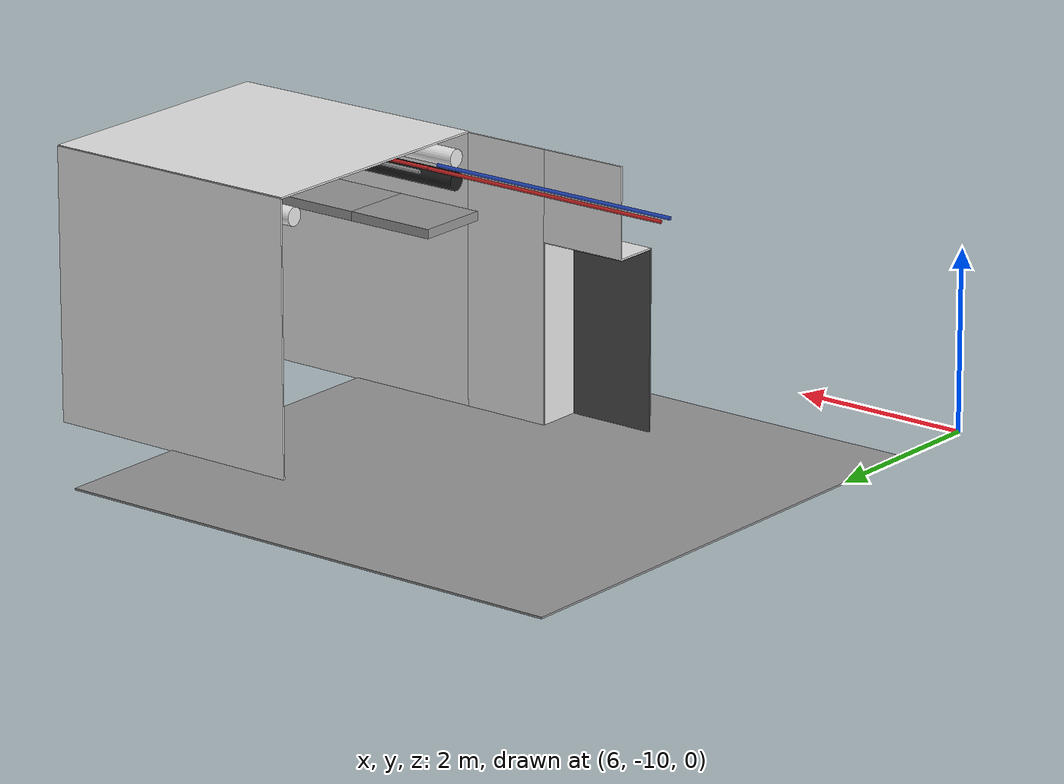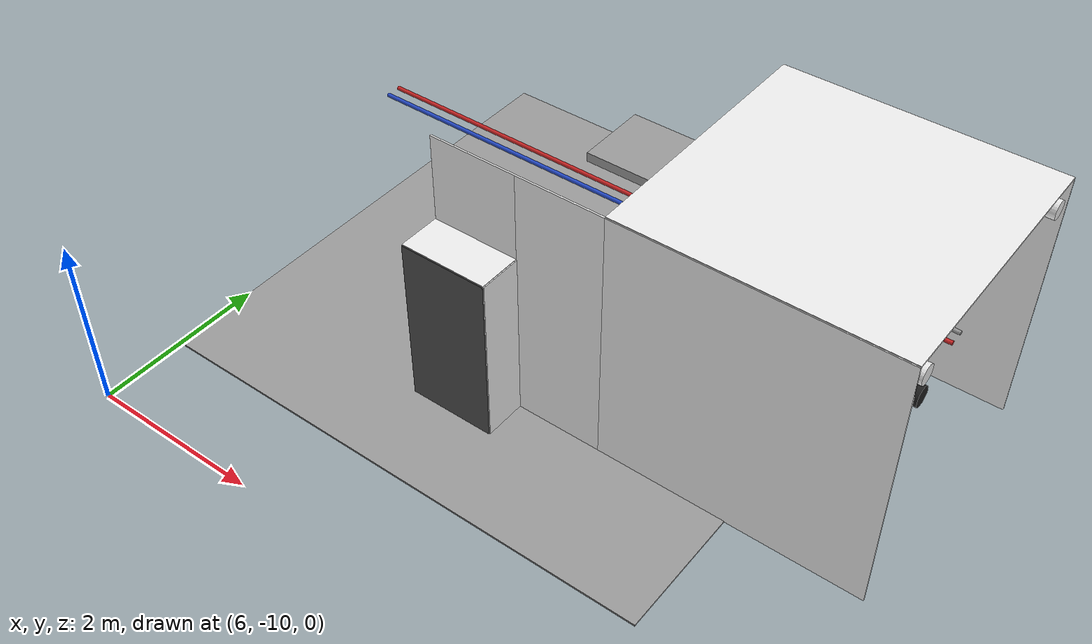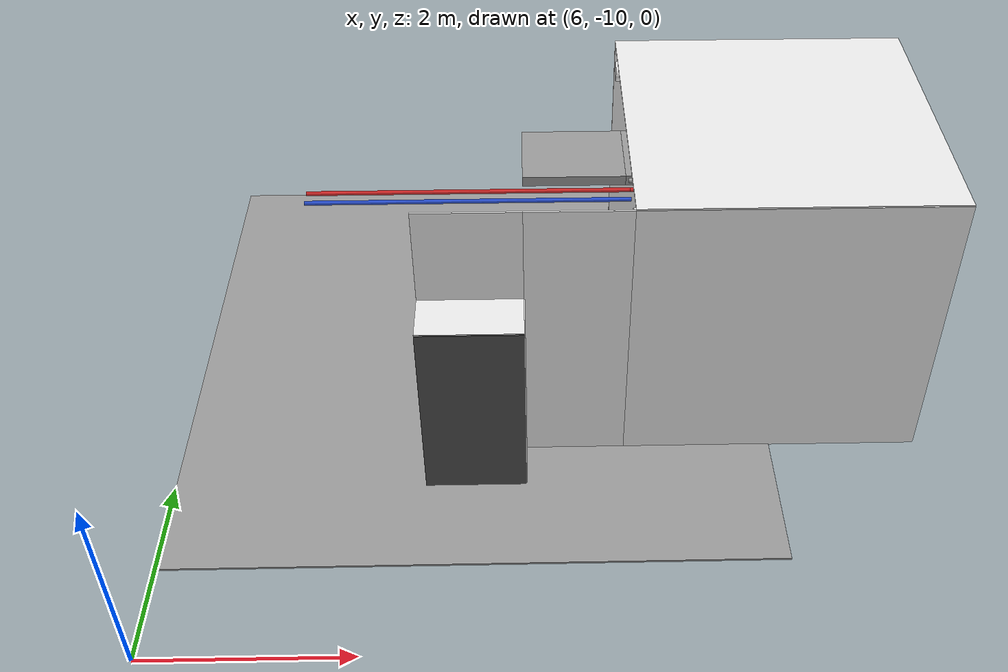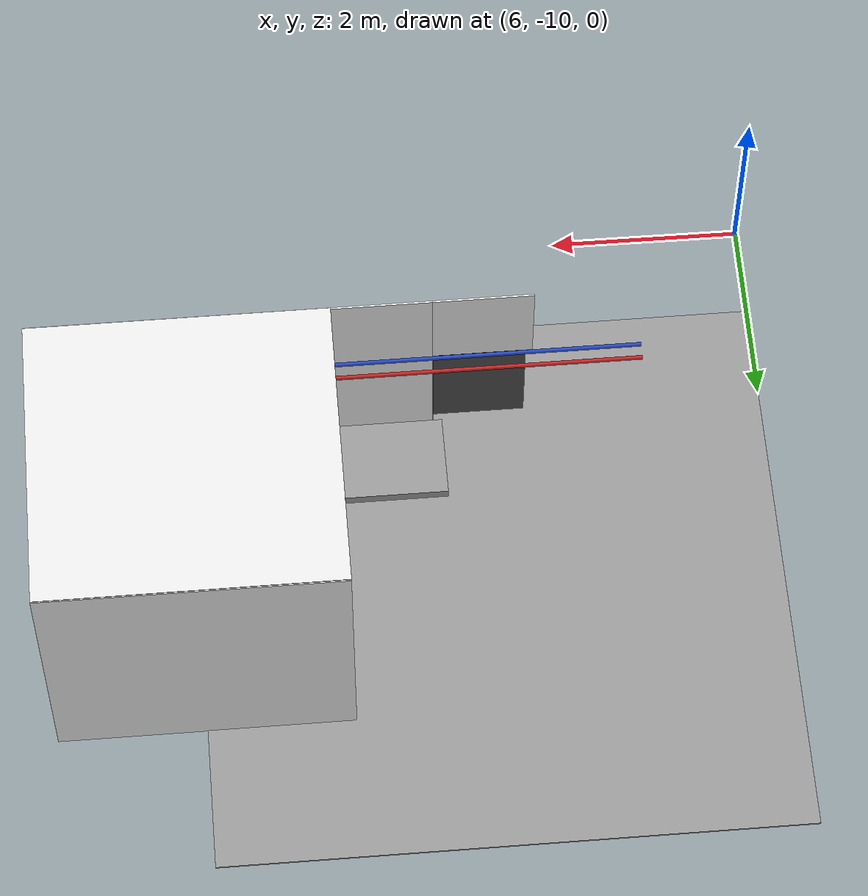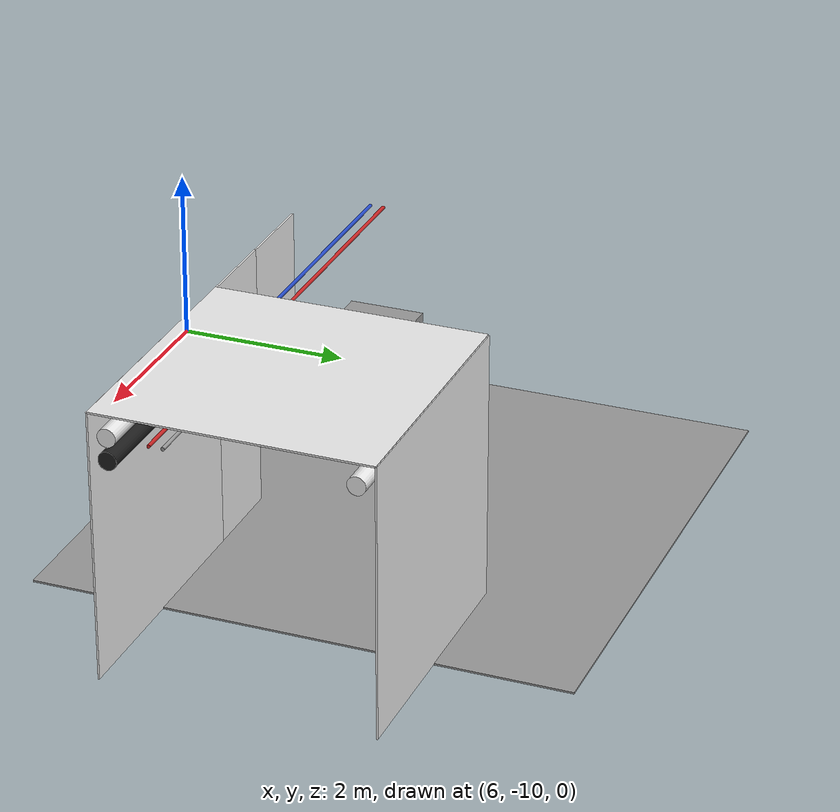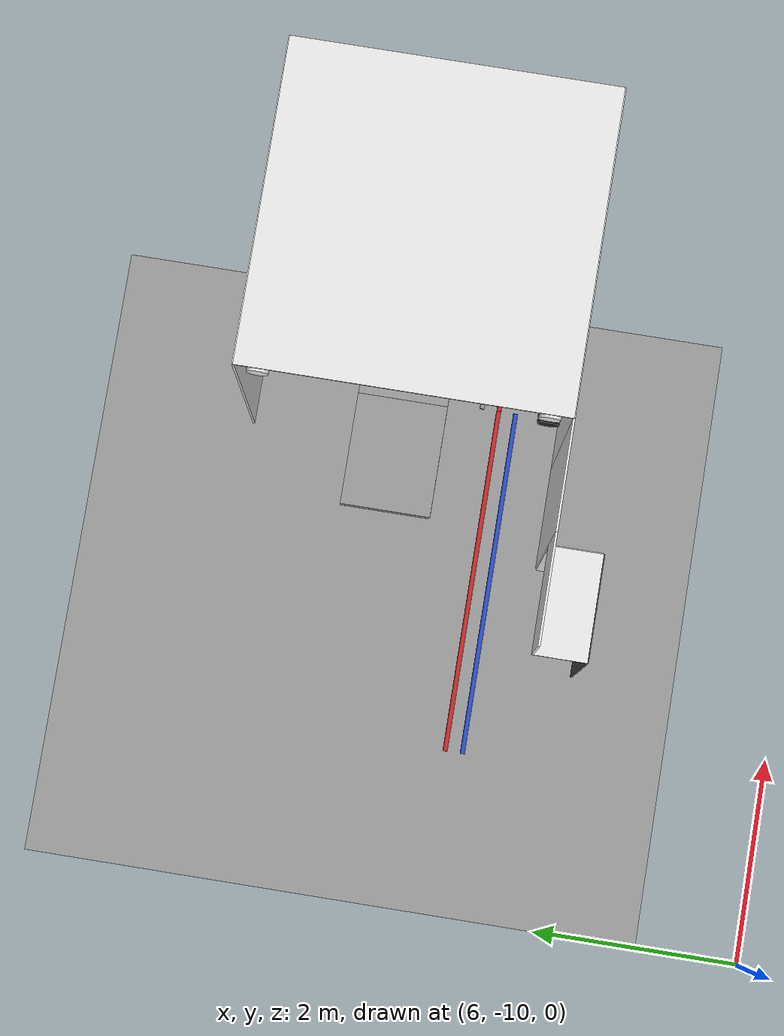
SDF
<sdf version="1.6">
 <world name="default">
  <model name="ceiling_1_3_-2_2_1">
   <pose>10.0 -6.0 2.55 0.0 0.0 -1.57</pose>
   <link name="link_1">
    <visual name="visual">
     <geometry><box><size>0.8 1 0.1</size></box></geometry>
     <material>
      <script><uri>file://media/materials/scripts/gazebo.material</uri><name>Gazebo/Grey</name></script>
     </material>
    </visual>
    <collision name="collision"><geometry><box><size>0.8 1 0.1</size></box></geometry></collision>
   </link>
   <static>1</static>
  </model>
  <model name="red_pipe_right_3_-2_0_1">
   <static>1</static>
   <pose>9.0 -6.0 2.76 0.0 0.0 -1.57</pose>
   <link name="link_0">
    <visual name="visual">
     <pose>0.85 0 0 1.57 0 0</pose>
     <geometry><cylinder><radius>0.02</radius><length>3.0</length></cylinder></geometry>
     <material>
      <script><uri>file://media/materials/scripts/gazebo.material</uri><name>Gazebo/Red</name></script>
     </material>
    </visual>
    <collision name="collision">
     <pose>0.85 0 0 1.57 0 0</pose>
     <geometry><cylinder><radius>0.02</radius><length>3.0</length></cylinder></geometry>
    </collision>
   </link>
  </model>
  <model name="blue_pipe_right_3_-2_0_1">
   <static>1</static>
   <pose>9.0 -6.0 2.76 0.0 0.0 -1.57</pose>
   <link name="link_0">
    <visual name="visual">
     <pose>1 0 0 1.57 0 0</pose>
     <geometry><cylinder><radius>0.02</radius><length>3.0</length></cylinder></geometry>
     <material>
      <script><uri>file://media/materials/scripts/gazebo.material</uri><name>Gazebo/Blue</name></script>
     </material>
    </visual>
    <collision name="collision">
     <pose>1 0 0 1.57 0 0</pose>
     <geometry><cylinder><radius>0.02</radius><length>3.0</length></cylinder></geometry>
    </collision>
   </link>
  </model>
  <model name="wall_right_front_left_3_-2_0_1">
   <static>1</static>
   <pose>10.0 -7.5 1.5 0.0 0.0 0.0</pose>
   <link name="link">
    <collision name="collision"><geometry><box><size>1.0 0.02 3.0</size></box></geometry></collision>
    <visual name="visual">
     <material>
      <script><name>Gazebo/White</name><uri>file://media/materials/scripts/gazebo.material</uri></script>
     </material>
     <geometry><box><size>1.0 0.02 3.0</size></box></geometry>
    </visual>
   </link>
  </model>
  <model name="wall_right_front_up_3_-2_0_1">
   <static>1</static>
   <pose>9.0 -7.5 2.5 0.0 0.0 0.0</pose>
   <link name="link">
    <collision name="collision"><geometry><box><size>1.0 0.02 1.0</size></box></geometry></collision>
    <visual name="visual">
     <material>
      <script><name>Gazebo/White</name><uri>file://media/materials/scripts/gazebo.material</uri></script>
     </material>
     <geometry><box><size>1.0 0.02 1.0</size></box></geometry>
    </visual>
   </link>
  </model>
  <model name="wall_right_inside_back_3_-2_0_1">
   <static>1</static>
   <pose>9.0 -8.0 1.0 0.0 0.0 0.0</pose>
   <link name="link">
    <collision name="collision"><geometry><box><size>1 0.02 2</size></box></geometry></collision>
    <visual name="visual">
     <material>
      <script><name>Gazebo/DarkGrey</name><uri>file://media/materials/scripts/gazebo.material</uri></script>
     </material>
     <geometry><box><size>1 0.02 2</size></box></geometry>
    </visual>
   </link>
  </model>
  <model name="wall_right_inside_left_3_-2_0_1">
   <static>1</static>
   <pose>9.5 -7.75 1.0 0.0 0.0 -1.57</pose>
   <link name="link">
    <collision name="collision"><geometry><box><size>0.5 0.02 2</size></box></geometry></collision>
    <visual name="visual">
     <material>
      <script><name>Gazebo/White</name><uri>file://media/materials/scripts/gazebo.material</uri></script>
     </material>
     <geometry><box><size>0.5 0.02 2</size></box></geometry>
    </visual>
   </link>
  </model>
  <model name="wall_right_inside_top_3_-2_0_1">
   <static>1</static>
   <pose>9.0 -7.75 2.0 1.57 0.0 0.0</pose>
   <link name="link">
    <collision name="collision"><geometry><box><size>1 0.02 0.5</size></box></geometry></collision>
    <visual name="visual">
     <material>
      <script><name>Gazebo/White</name><uri>file://media/materials/scripts/gazebo.material</uri></script>
     </material>
     <geometry><box><size>1 0.02 0.5</size></box></geometry>
    </visual>
   </link>
  </model>
  <model name="wall_bottom_3_-2_0_1">
   <static>1</static>
   <pose>9.0 -6.0 0.0 0.0 0.0 -1.57</pose>
   <link name="link">
    <collision name="collision"><geometry><box><size>6.0 6.0 0.02</size></box></geometry></collision>
    <visual name="visual">
     <material>
      <script><name>Gazebo/Grey</name><uri>file://media/materials/scripts/gazebo.material</uri></script>
     </material>
     <geometry><box><size>6.0 6.0 0.02</size></box></geometry>
    </visual>
   </link>
  </model>
  <model name="wall_right_4_-2_0_1">
   <static>1</static>
   <pose>12.0 -7.5 1.5 0.0 0.0 0.0</pose>
   <link name="link">
    <collision name="collision"><geometry><box><size>3.0 0.02 3.0</size></box></geometry></collision>
    <visual name="visual">
     <material>
      <script><name>Gazebo/White</name><uri>file://media/materials/scripts/gazebo.material</uri></script>
     </material>
     <geometry><box><size>3.0 0.02 3.0</size></box></geometry>
    </visual>
   </link>
  </model>
  <model name="wall_left_4_-2_0_1">
   <static>1</static>
   <pose>12.0 -4.5 1.5 0.0 0.0 0.0</pose>
   <link name="link">
    <collision name="collision"><geometry><box><size>3.0 0.02 3.0</size></box></geometry></collision>
    <visual name="visual">
     <material>
      <script><name>Gazebo/White</name><uri>file://media/materials/scripts/gazebo.material</uri></script>
     </material>
     <geometry><box><size>3.0 0.02 3.0</size></box></geometry>
    </visual>
   </link>
  </model>
  <model name="wall_top_4_-2_0_1">
   <static>1</static>
   <pose>12.0 -6.0 3.0 1.57 0.0 -1.57</pose>
   <link name="link">
    <collision name="collision"><geometry><box><size>3.0 0.02 3.0</size></box></geometry></collision>
    <visual name="visual">
     <material>
      <script><name>Gazebo/White</name><uri>file://media/materials/scripts/gazebo.material</uri></script>
     </material>
     <geometry><box><size>3.0 0.02 3.0</size></box></geometry>
    </visual>
   </link>
  </model>
  <model name="ceiling_1_4_-2_0_1">
   <pose>12.0 -6.0 2.55 0.0 0.0 -1.57</pose>
   <link name="link_1">
    <visual name="visual">
     <geometry><box><size>0.8 1 0.1</size></box></geometry>
     <material>
      <script><uri>file://media/materials/scripts/gazebo.material</uri><name>Gazebo/Grey</name></script>
     </material>
    </visual>
    <collision name="collision"><geometry><box><size>0.8 1 0.1</size></box></geometry></collision>
   </link>
   <static>1</static>
  </model>
  <model name="ceiling_1_4_-2_1_1">
   <pose>11.0 -6.0 2.55 0.0 0.0 -1.57</pose>
   <link name="link_1">
    <visual name="visual">
     <geometry><box><size>0.8 1 0.1</size></box></geometry>
     <material>
      <script><uri>file://media/materials/scripts/gazebo.material</uri><name>Gazebo/Grey</name></script>
     </material>
    </visual>
    <collision name="collision"><geometry><box><size>0.8 1 0.1</size></box></geometry></collision>
   </link>
   <static>1</static>
  </model>
  <model name="white_pipe_left_4_-2_0_1">
   <static>1</static>
   <pose>12.0 -6.0 2.76 0.0 0.0 -1.57</pose>
   <link name="link_0">
    <visual name="visual">
     <pose>-1.3 0 0 1.57 0 0</pose>
     <geometry><cylinder><radius>0.1</radius><length>3.0</length></cylinder></geometry>
     <material>
      <script><uri>file://media/materials/scripts/gazebo.material</uri><name>Gazebo/White</name></script>
     </material>
    </visual>
    <collision name="collision">
     <pose>-1.3 0 0 1.57 0 0</pose>
     <geometry><cylinder><radius>0.1</radius><length>3.0</length></cylinder></geometry>
    </collision>
   </link>
  </model>
  <model name="white_pipe_right_4_-2_0_1">
   <static>1</static>
   <pose>12.0 -6.0 2.76 0.0 0.0 -1.57</pose>
   <link name="link_0">
    <visual name="visual">
     <pose>1.3 0 0 1.57 0 0</pose>
     <geometry><cylinder><radius>0.1</radius><length>3.0</length></cylinder></geometry>
     <material>
      <script><uri>file://media/materials/scripts/gazebo.material</uri><name>Gazebo/White</name></script>
     </material>
    </visual>
    <collision name="collision">
     <pose>1.3 0 0 1.57 0 0</pose>
     <geometry><cylinder><radius>0.1</radius><length>3.0</length></cylinder></geometry>
    </collision>
   </link>
  </model>
  <model name="black_pipe_right_4_-2_0_1">
   <static>1</static>
   <pose>12.0 -6.0 2.76 0.0 0.0 -1.57</pose>
   <link name="link_0">
    <visual name="visual">
     <pose>1.3 0 -0.25 1.57 0 0</pose>
     <geometry><cylinder><radius>0.1</radius><length>3.0</length></cylinder></geometry>
     <material>
      <script><uri>file://media/materials/scripts/gazebo.material</uri><name>Gazebo/Black</name></script>
     </material>
    </visual>
    <collision name="collision">
     <pose>1.3 0 -0.25 1.57 0 0</pose>
     <geometry><cylinder><radius>0.1</radius><length>3.0</length></cylinder></geometry>
    </collision>
   </link>
  </model>
  <model name="grey_pipe_right_4_-2_0_1">
   <static>1</static>
   <pose>12.0 -6.0 2.76 0.0 0.0 -1.57</pose>
   <link name="link_0">
    <visual name="visual">
     <pose>0.7 0 0 1.57 0 0</pose>
     <geometry><cylinder><radius>0.02</radius><length>3.0</length></cylinder></geometry>
     <material>
      <script><uri>file://media/materials/scripts/gazebo.material</uri><name>Gazebo/Grey</name></script>
     </material>
    </visual>
    <collision name="collision">
     <pose>0.7 0 0 1.57 0 0</pose>
     <geometry><cylinder><radius>0.02</radius><length>3.0</length></cylinder></geometry>
    </collision>
   </link>
  </model>
  <model name="red_pipe_right_4_-2_0_1">
   <static>1</static>
   <pose>12.0 -6.0 2.76 0.0 0.0 -1.57</pose>
   <link name="link_0">
    <visual name="visual">
     <pose>0.85 0 0 1.57 0 0</pose>
     <geometry><cylinder><radius>0.02</radius><length>3.0</length></cylinder></geometry>
     <material>
      <script><uri>file://media/materials/scripts/gazebo.material</uri><name>Gazebo/Red</name></script>
     </material>
    </visual>
    <collision name="collision">
     <pose>0.85 0 0 1.57 0 0</pose>
     <geometry><cylinder><radius>0.02</radius><length>3.0</length></cylinder></geometry>
    </collision>
   </link>
  </model>
 </world>
</sdf>
